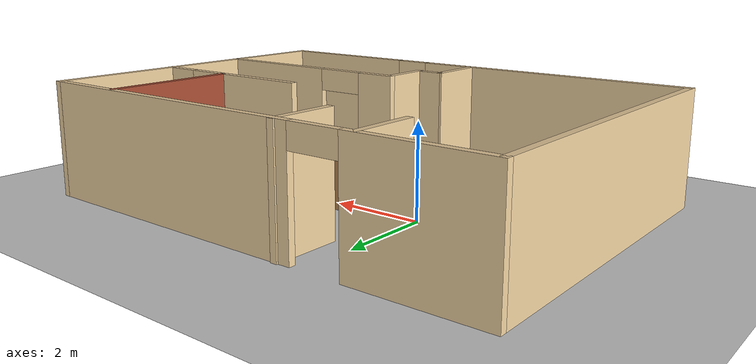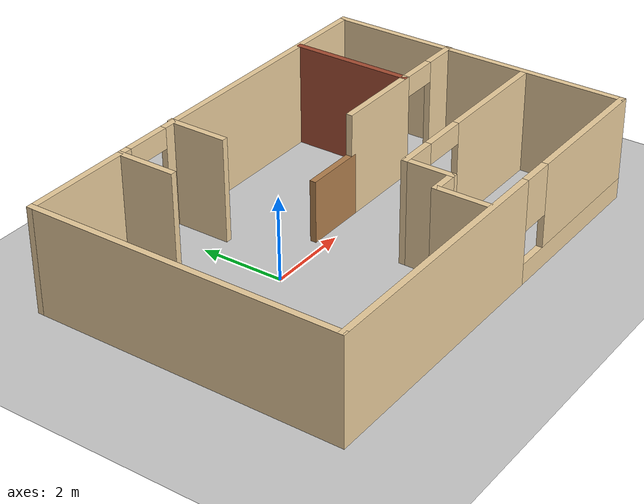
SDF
<sdf version="1.6">
 <world name="default">
  <model name="ground_plane">
   <static>1</static>
   <link name="link">
    <collision name="collision">
     <geometry><plane><normal>0 0 1</normal><size>100 100</size></plane></geometry>
     <surface><friction><ode><mu>100</mu><mu2>50</mu2></ode></friction></surface>
    </collision>
    <visual name="visual">
     <cast_shadows>0</cast_shadows>
     <geometry><plane><normal>0 0 1</normal><size>100 100</size></plane></geometry>
     <material>
      <script><uri>file://media/materials/scripts/gazebo.material</uri><name>Gazebo/Grey</name></script>
     </material>
    </visual>
   </link>
  </model>
  <model name="building">
   <pose>1.64502 -0.447703 0 0 -0 0</pose>
   <link name="Wall_10">
    <collision name="Wall_10_Collision">
     <geometry><box><size>7.5 0.15 2.5</size></box></geometry>
     <pose>0 0 1.25 0 -0 0</pose>
    </collision>
    <visual name="Wall_10_Visual">
     <pose>0 0 1.25 0 -0 0</pose>
     <geometry><box><size>7.5 0.15 2.5</size></box></geometry>
     <material>
      <script><uri>file://media/materials/scripts/gazebo.material</uri><name>Gazebo/Grey</name></script>
      <ambient>0.921569 0.807843 0.615686 1</ambient>
     </material>
     <meta><layer>0</layer></meta>
    </visual>
    <pose>5.29084 -0.017445 0 0 -0 1.5708</pose>
   </link>
   <link name="Wall_12">
    <collision name="Wall_12_Collision">
     <geometry><box><size>1.448 0.15 2.5</size></box></geometry>
     <pose>0 0 1.25 0 -0 0</pose>
    </collision>
    <visual name="Wall_12_Visual">
     <pose>0 0 1.25 0 -0 0</pose>
     <geometry><box><size>1.448 0.15 2.5</size></box></geometry>
     <material>
      <script><uri>file://media/materials/scripts/gazebo.material</uri><name>Gazebo/Grey</name></script>
      <ambient>0.921569 0.807843 0.615686 1</ambient>
     </material>
     <meta><layer>0</layer></meta>
    </visual>
    <pose>-0.220837 -3.04333 0 0 -0 1.5708</pose>
   </link>
   <link name="Wall_13">
    <collision name="Wall_13_Collision">
     <geometry><box><size>0.75 0.15 2.5</size></box></geometry>
     <pose>0 0 1.25 0 -0 0</pose>
    </collision>
    <visual name="Wall_13_Visual">
     <pose>0 0 1.25 0 -0 0</pose>
     <geometry><box><size>0.75 0.15 2.5</size></box></geometry>
     <material>
      <script><uri>file://media/materials/scripts/gazebo.material</uri><name>Gazebo/Grey</name></script>
      <ambient>0.921569 0.807843 0.615686 1</ambient>
     </material>
     <meta><layer>0</layer></meta>
    </visual>
    <pose>0.079367 -2.39428 0 0 -0 0.000154</pose>
   </link>
   <link name="Wall_14">
    <collision name="Wall_14_Collision">
     <geometry><box><size>1.25 0.15 2.5</size></box></geometry>
     <pose>0 0 1.25 0 -0 0</pose>
    </collision>
    <visual name="Wall_14_Visual">
     <pose>0 0 1.25 0 -0 0</pose>
     <geometry><box><size>1.25 0.15 2.5</size></box></geometry>
     <material>
      <script><uri>file://media/materials/scripts/gazebo.material</uri><name>Gazebo/Grey</name></script>
      <ambient>0.921569 0.807843 0.615686 1</ambient>
     </material>
     <meta><layer>0</layer></meta>
    </visual>
    <pose>0.379571 -1.84424 0 0 -0 1.5708</pose>
   </link>
   <link name="Wall_15">
    <pose>2.80457 -1.29424 0 0 -0 0</pose>
    <visual name="Wall_15_Visual_0">
     <pose>-2.04188 0 1.25 0 -0 0</pose>
     <geometry><box><size>0.916244 0.15 2.5</size></box></geometry>
     <material>
      <script><uri>file://media/materials/scripts/gazebo.material</uri><name>Gazebo/Grey</name></script>
      <ambient>0.921569 0.807843 0.615686 1</ambient>
     </material>
     <meta><layer>0</layer></meta>
    </visual>
    <collision name="Wall_15_Collision_0">
     <geometry><box><size>0.916244 0.15 2.5</size></box></geometry>
     <pose>-2.04188 0 1.25 0 -0 0</pose>
    </collision>
    <visual name="Wall_15_Visual_1">
     <pose>1.00812 0 1.25 0 -0 0</pose>
     <geometry><box><size>2.98376 0.15 2.5</size></box></geometry>
     <material>
      <script><uri>file://media/materials/scripts/gazebo.material</uri><name>Gazebo/Grey</name></script>
      <ambient>0.921569 0.807843 0.615686 1</ambient>
     </material>
     <meta><layer>0</layer></meta>
    </visual>
    <collision name="Wall_15_Collision_1">
     <geometry><box><size>2.98376 0.15 2.5</size></box></geometry>
     <pose>1.00812 0 1.25 0 -0 0</pose>
    </collision>
    <visual name="Wall_15_Visual_2">
     <pose>-1.03376 0 2.25 0 -0 0</pose>
     <geometry><box><size>1.1 0.15 0.5</size></box></geometry>
     <material>
      <script><uri>file://media/materials/scripts/gazebo.material</uri><name>Gazebo/Grey</name></script>
      <ambient>0.921569 0.807843 0.615686 1</ambient>
     </material>
     <meta><layer>0</layer></meta>
    </visual>
    <collision name="Wall_15_Collision_2">
     <geometry><box><size>1.1 0.15 0.5</size></box></geometry>
     <pose>-1.03376 0 2.25 0 -0 0</pose>
    </collision>
   </link>
   <link name="Wall_19">
    <collision name="Wall_19_Collision">
     <geometry><box><size>3 0.15 2.5</size></box></geometry>
     <pose>0 0 1.25 0 -0 0</pose>
    </collision>
    <visual name="Wall_19_Visual">
     <pose>0 0 1.25 0 -0 0</pose>
     <geometry><box><size>3 0.15 2.5</size></box></geometry>
     <material>
      <script><uri>file://media/materials/scripts/gazebo.material</uri><name>Gazebo/Bricks</name></script>
      <ambient>0.921569 0.807843 0.615686 1</ambient>
     </material>
     <meta><layer>0</layer></meta>
    </visual>
    <pose>3.48413 2.17983 0 0 0 -1.57077</pose>
   </link>
   <link name="Wall_20">
    <pose>4.39666 0.754668 0 0 -0 0</pose>
    <visual name="Wall_20_Visual_0">
     <pose>-0.912682 0 1.25 0 -0 0</pose>
     <geometry><box><size>0.149636 0.15 2.5</size></box></geometry>
     <material>
      <script><uri>file://media/materials/scripts/gazebo.material</uri><name>Gazebo/Grey</name></script>
      <ambient>0.921569 0.807843 0.615686 1</ambient>
     </material>
     <meta><layer>0</layer></meta>
    </visual>
    <collision name="Wall_20_Collision_0">
     <geometry><box><size>0.149636 0.15 2.5</size></box></geometry>
     <pose>-0.912682 0 1.25 0 -0 0</pose>
    </collision>
    <visual name="Wall_20_Visual_1">
     <pose>0.524818 0 1.25 0 -0 0</pose>
     <geometry><box><size>0.925364 0.15 2.5</size></box></geometry>
     <material>
      <script><uri>file://media/materials/scripts/gazebo.material</uri><name>Gazebo/Grey</name></script>
      <ambient>0.921569 0.807843 0.615686 1</ambient>
     </material>
     <meta><layer>0</layer></meta>
    </visual>
    <collision name="Wall_20_Collision_1">
     <geometry><box><size>0.925364 0.15 2.5</size></box></geometry>
     <pose>0.524818 0 1.25 0 -0 0</pose>
    </collision>
    <visual name="Wall_20_Visual_2">
     <pose>-0.387864 0 2.25 0 -0 0</pose>
     <geometry><box><size>0.9 0.15 0.5</size></box></geometry>
     <material>
      <script><uri>file://media/materials/scripts/gazebo.material</uri><name>Gazebo/Grey</name></script>
      <ambient>0.921569 0.807843 0.615686 1</ambient>
     </material>
     <meta><layer>0</layer></meta>
    </visual>
    <collision name="Wall_20_Collision_2">
     <geometry><box><size>0.9 0.15 0.5</size></box></geometry>
     <pose>-0.387864 0 2.25 0 -0 0</pose>
    </collision>
   </link>
   <link name="Wall_22">
    <collision name="Wall_22_Collision">
     <geometry><box><size>2.25 0.15 2.5</size></box></geometry>
     <pose>0 0 1.25 0 -0 0</pose>
    </collision>
    <visual name="Wall_22_Visual">
     <pose>0 0 1.25 0 -0 0</pose>
     <geometry><box><size>2.25 0.15 2.5</size></box></geometry>
     <material>
      <script><uri>file://media/materials/scripts/gazebo.material</uri><name>Gazebo/Grey</name></script>
      <ambient>0.921569 0.807843 0.615686 1</ambient>
     </material>
     <meta><layer>0</layer></meta>
    </visual>
    <pose>2.43416 0.754668 0 0 -0 3.14159</pose>
   </link>
   <link name="Wall_23">
    <collision name="Wall_23_Collision">
     <geometry><box><size>1.5 0.15 1.5</size></box></geometry>
     <pose>0 0 0.75 0 -0 0</pose>
    </collision>
    <visual name="Wall_23_Visual">
     <pose>0 0 0.75 0 -0 0</pose>
     <geometry><box><size>1.5 0.15 1.5</size></box></geometry>
     <material>
      <script><uri>file://media/materials/scripts/gazebo.material</uri><name>Gazebo/Wood</name></script>
      <ambient>0.921569 0.807843 0.615686 1</ambient>
     </material>
     <meta><layer>0</layer></meta>
    </visual>
    <pose>0.709163 0.754668 0 0 -0 3.14159</pose>
   </link>
   <link name="Wall_25">
    <collision name="Wall_25_Collision">
     <geometry><box><size>1.5 0.15 2.5</size></box></geometry>
     <pose>0 0 1.25 0 -0 0</pose>
    </collision>
    <visual name="Wall_25_Visual">
     <pose>0 0 1.25 0 -0 0</pose>
     <geometry><box><size>1.5 0.15 2.5</size></box></geometry>
     <material>
      <script><uri>file://media/materials/scripts/gazebo.material</uri><name>Gazebo/Grey</name></script>
      <ambient>0.921569 0.807843 0.615686 1</ambient>
     </material>
     <meta><layer>0</layer></meta>
    </visual>
    <pose>-2.74237 2.98246 0 0 0 -1.5708</pose>
   </link>
   <link name="Wall_27">
    <collision name="Wall_27_Collision">
     <geometry><box><size>1.5 0.15 2.5</size></box></geometry>
     <pose>0 0 1.25 0 -0 0</pose>
    </collision>
    <visual name="Wall_27_Visual">
     <pose>0 0 1.25 0 -0 0</pose>
     <geometry><box><size>1.5 0.15 2.5</size></box></geometry>
     <material>
      <script><uri>file://media/materials/scripts/gazebo.material</uri><name>Gazebo/Grey</name></script>
      <ambient>0.921569 0.807843 0.615686 1</ambient>
     </material>
     <meta><layer>0</layer></meta>
    </visual>
    <pose>-1.04583 3.01744 0 0 0 -1.5708</pose>
   </link>
   <link name="Wall_5">
    <pose>-0.009163 3.65756 0 0 -0 3.14159</pose>
    <visual name="Wall_5_Visual_0">
     <pose>-2.00204 0 1.25 0 -0 0</pose>
     <geometry><box><size>6.74592 0.15 2.5</size></box></geometry>
     <material>
      <script><uri>file://media/materials/scripts/gazebo.material</uri><name>Gazebo/Grey</name></script>
      <ambient>0.921569 0.807843 0.615686 1</ambient>
     </material>
     <meta><layer>0</layer></meta>
    </visual>
    <collision name="Wall_5_Collision_0">
     <geometry><box><size>6.74592 0.15 2.5</size></box></geometry>
     <pose>-2.00204 0 1.25 0 -0 0</pose>
    </collision>
    <visual name="Wall_5_Visual_1">
     <pose>3.92296 0 1.25 0 -0 0</pose>
     <geometry><box><size>2.90408 0.15 2.5</size></box></geometry>
     <material>
      <script><uri>file://media/materials/scripts/gazebo.material</uri><name>Gazebo/Grey</name></script>
      <ambient>0.921569 0.807843 0.615686 1</ambient>
     </material>
     <meta><layer>0</layer></meta>
    </visual>
    <collision name="Wall_5_Collision_1">
     <geometry><box><size>2.90408 0.15 2.5</size></box></geometry>
     <pose>3.92296 0 1.25 0 -0 0</pose>
    </collision>
    <visual name="Wall_5_Visual_2">
     <pose>1.92092 0 2.25 0 -0 0</pose>
     <geometry><box><size>1.1 0.15 0.5</size></box></geometry>
     <material>
      <script><uri>file://media/materials/scripts/gazebo.material</uri><name>Gazebo/Grey</name></script>
      <ambient>0.921569 0.807843 0.615686 1</ambient>
     </material>
     <meta><layer>0</layer></meta>
    </visual>
    <collision name="Wall_5_Collision_2">
     <geometry><box><size>1.1 0.15 0.5</size></box></geometry>
     <pose>1.92092 0 2.25 0 -0 0</pose>
    </collision>
   </link>
   <link name="Wall_8">
    <collision name="Wall_8_Collision">
     <geometry><box><size>7.5 0.15 2.5</size></box></geometry>
     <pose>0 0 1.25 0 -0 0</pose>
    </collision>
    <visual name="Wall_8_Visual">
     <pose>0 0 1.25 0 -0 0</pose>
     <geometry><box><size>7.5 0.15 2.5</size></box></geometry>
     <material>
      <script><uri>file://media/materials/scripts/gazebo.material</uri><name>Gazebo/Grey</name></script>
      <ambient>0.921569 0.807843 0.615686 1</ambient>
     </material>
     <meta><layer>0</layer></meta>
    </visual>
    <pose>-5.30916 -0.017445 0 0 0 -1.5708</pose>
   </link>
   <link name="Wall_9">
    <pose>-0.009163 -3.69245 0 0 -0 0</pose>
    <visual name="Wall_9_Visual_0">
     <pose>-2.15529 0 1.25 0 -0 0</pose>
     <geometry><box><size>6.43941 0.15 2.5</size></box></geometry>
     <material>
      <script><uri>file://media/materials/scripts/gazebo.material</uri><name>Gazebo/Grey</name></script>
      <ambient>0.921569 0.807843 0.615686 1</ambient>
     </material>
     <meta><layer>0</layer></meta>
    </visual>
    <collision name="Wall_9_Collision_0">
     <geometry><box><size>6.43941 0.15 2.5</size></box></geometry>
     <pose>-2.15529 0 1.25 0 -0 0</pose>
    </collision>
    <visual name="Wall_9_Visual_1">
     <pose>3.21971 0 0.25 0 -0 0</pose>
     <geometry><box><size>4.31059 0.15 0.5</size></box></geometry>
     <material>
      <script><uri>file://media/materials/scripts/gazebo.material</uri><name>Gazebo/Grey</name></script>
      <ambient>0.921569 0.807843 0.615686 1</ambient>
     </material>
     <meta><layer>0</layer></meta>
    </visual>
    <collision name="Wall_9_Collision_1">
     <geometry><box><size>4.31059 0.15 0.5</size></box></geometry>
     <pose>3.21971 0 0.25 0 -0 0</pose>
    </collision>
    <visual name="Wall_9_Visual_2">
     <pose>3.61971 0 1.5 0 -0 0</pose>
     <geometry><box><size>3.51059 0.15 2</size></box></geometry>
     <material>
      <script><uri>file://media/materials/scripts/gazebo.material</uri><name>Gazebo/Grey</name></script>
      <ambient>0.921569 0.807843 0.615686 1</ambient>
     </material>
     <meta><layer>0</layer></meta>
    </visual>
    <collision name="Wall_9_Collision_2">
     <geometry><box><size>3.51059 0.15 2</size></box></geometry>
     <pose>3.61971 0 1.5 0 -0 0</pose>
    </collision>
    <visual name="Wall_9_Visual_3">
     <pose>1.46441 0 1.9 0 -0 0</pose>
     <geometry><box><size>0.8 0.15 1.2</size></box></geometry>
     <material>
      <script><uri>file://media/materials/scripts/gazebo.material</uri><name>Gazebo/Grey</name></script>
      <ambient>0.921569 0.807843 0.615686 1</ambient>
     </material>
     <meta><layer>0</layer></meta>
    </visual>
    <collision name="Wall_9_Collision_3">
     <geometry><box><size>0.8 0.15 1.2</size></box></geometry>
     <pose>1.46441 0 1.9 0 -0 0</pose>
    </collision>
   </link>
   <static>1</static>
  </model>
 </world>
</sdf>
